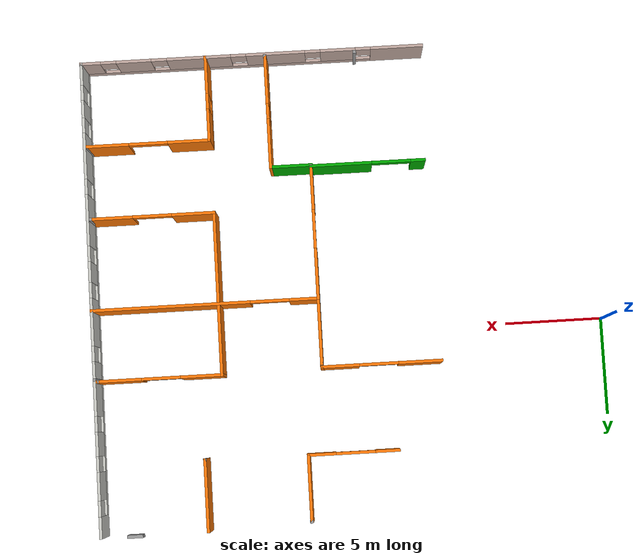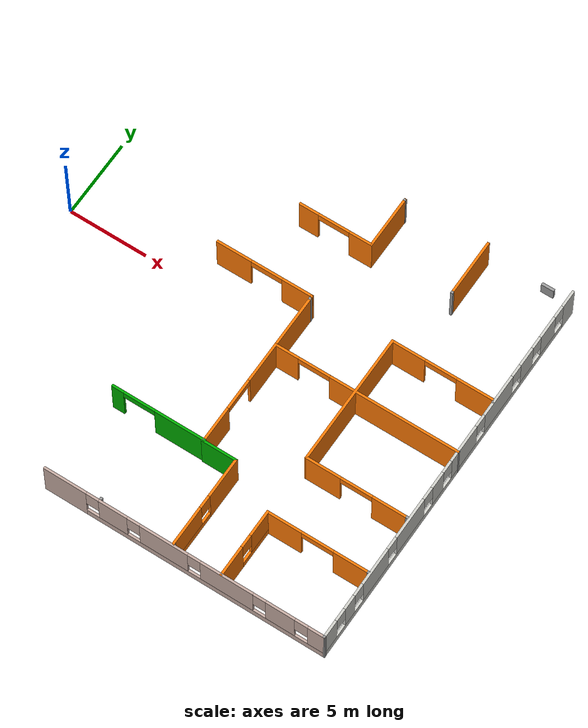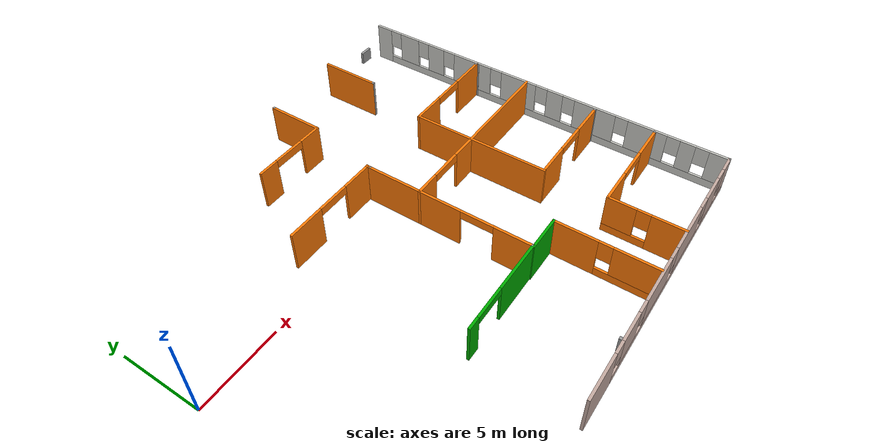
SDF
<sdf version="1.6">
 <model name="FloorPlan">
  <pose>-3.5402 -2.3631 0 0 -0 0</pose>
  <link name="Wall_1">
   <pose>29.8922 -0.024899 0 0 -0 -1.5708</pose>
   <visual name="Wall_1_Visual_0">
    <pose>-11.6902 0 1.25 0 -0 0</pose>
    <geometry><box><size>1.11957 0.15 2.5</size></box></geometry>
    <material>
     <script><uri>file://media/materials/scripts/gazebo.material</uri><name>Gazebo/CeilingTiled</name></script>
     <ambient>0.760784 0.662745 0.627451 1</ambient>
    </material>
    <meta><layer>0</layer></meta>
   </visual>
   <collision name="Wall_1_Collision_0">
    <geometry><box><size>1.11957 0.15 2.5</size></box></geometry>
    <pose>-11.6902 0 1.25 0 -0 0</pose>
   </collision>
   <visual name="Wall_1_Visual_1">
    <pose>0.559784 0 0.25 0 -0 0</pose>
    <geometry><box><size>23.3804 0.15 0.5</size></box></geometry>
    <material>
     <script><uri>file://media/materials/scripts/gazebo.material</uri><name>Gazebo/CeilingTiled</name></script>
     <ambient>0.760784 0.662745 0.627451 1</ambient>
    </material>
    <meta><layer>0</layer></meta>
   </visual>
   <collision name="Wall_1_Collision_1">
    <geometry><box><size>23.3804 0.15 0.5</size></box></geometry>
    <pose>0.559784 0 0.25 0 -0 0</pose>
   </collision>
   <visual name="Wall_1_Visual_2">
    <pose>-9.60688 0 1.5 0 -0 0</pose>
    <geometry><box><size>1.44711 0.15 2</size></box></geometry>
    <material>
     <script><uri>file://media/materials/scripts/gazebo.material</uri><name>Gazebo/CeilingTiled</name></script>
     <ambient>0.760784 0.662745 0.627451 1</ambient>
    </material>
    <meta><layer>0</layer></meta>
   </visual>
   <collision name="Wall_1_Collision_2">
    <geometry><box><size>1.44711 0.15 2</size></box></geometry>
    <pose>-9.60688 0 1.5 0 -0 0</pose>
   </collision>
   <visual name="Wall_1_Visual_3">
    <pose>-7.46678 0 1.5 0 -0 0</pose>
    <geometry><box><size>1.2331 0.15 2</size></box></geometry>
    <material>
     <script><uri>file://media/materials/scripts/gazebo.material</uri><name>Gazebo/CeilingTiled</name></script>
     <ambient>0.760784 0.662745 0.627451 1</ambient>
    </material>
    <meta><layer>0</layer></meta>
   </visual>
   <collision name="Wall_1_Collision_3">
    <geometry><box><size>1.2331 0.15 2</size></box></geometry>
    <pose>-7.46678 0 1.5 0 -0 0</pose>
   </collision>
   <visual name="Wall_1_Visual_4">
    <pose>-4.6579 0 1.5 0 -0 0</pose>
    <geometry><box><size>2.78467 0.15 2</size></box></geometry>
    <material>
     <script><uri>file://media/materials/scripts/gazebo.material</uri><name>Gazebo/CeilingTiled</name></script>
     <ambient>0.760784 0.662745 0.627451 1</ambient>
    </material>
    <meta><layer>0</layer></meta>
   </visual>
   <collision name="Wall_1_Collision_4">
    <geometry><box><size>2.78467 0.15 2</size></box></geometry>
    <pose>-4.6579 0 1.5 0 -0 0</pose>
   </collision>
   <visual name="Wall_1_Visual_5">
    <pose>-1.23374 0 1.5 0 -0 0</pose>
    <geometry><box><size>2.46365 0.15 2</size></box></geometry>
    <material>
     <script><uri>file://media/materials/scripts/gazebo.material</uri><name>Gazebo/CeilingTiled</name></script>
     <ambient>0.760784 0.662745 0.627451 1</ambient>
    </material>
    <meta><layer>0</layer></meta>
   </visual>
   <collision name="Wall_1_Collision_5">
    <geometry><box><size>2.46365 0.15 2</size></box></geometry>
    <pose>-1.23374 0 1.5 0 -0 0</pose>
   </collision>
   <visual name="Wall_1_Visual_6">
    <pose>1.33438 0 1.5 0 -0 0</pose>
    <geometry><box><size>1.07259 0.15 2</size></box></geometry>
    <material>
     <script><uri>file://media/materials/scripts/gazebo.material</uri><name>Gazebo/CeilingTiled</name></script>
     <ambient>0.760784 0.662745 0.627451 1</ambient>
    </material>
    <meta><layer>0</layer></meta>
   </visual>
   <collision name="Wall_1_Collision_6">
    <geometry><box><size>1.07259 0.15 2</size></box></geometry>
    <pose>1.33438 0 1.5 0 -0 0</pose>
   </collision>
   <visual name="Wall_1_Visual_7">
    <pose>4.00951 0 1.5 0 -0 0</pose>
    <geometry><box><size>2.67766 0.15 2</size></box></geometry>
    <material>
     <script><uri>file://media/materials/scripts/gazebo.material</uri><name>Gazebo/CeilingTiled</name></script>
     <ambient>0.760784 0.662745 0.627451 1</ambient>
    </material>
    <meta><layer>0</layer></meta>
   </visual>
   <collision name="Wall_1_Collision_7">
    <geometry><box><size>2.67766 0.15 2</size></box></geometry>
    <pose>4.00951 0 1.5 0 -0 0</pose>
   </collision>
   <visual name="Wall_1_Visual_8">
    <pose>7.35341 0 1.5 0 -0 0</pose>
    <geometry><box><size>2.41015 0.15 2</size></box></geometry>
    <material>
     <script><uri>file://media/materials/scripts/gazebo.material</uri><name>Gazebo/CeilingTiled</name></script>
     <ambient>0.760784 0.662745 0.627451 1</ambient>
    </material>
    <meta><layer>0</layer></meta>
   </visual>
   <collision name="Wall_1_Collision_8">
    <geometry><box><size>2.41015 0.15 2</size></box></geometry>
    <pose>7.35341 0 1.5 0 -0 0</pose>
   </collision>
   <visual name="Wall_1_Visual_9">
    <pose>9.81453 0 1.5 0 -0 0</pose>
    <geometry><box><size>0.91208 0.15 2</size></box></geometry>
    <material>
     <script><uri>file://media/materials/scripts/gazebo.material</uri><name>Gazebo/CeilingTiled</name></script>
     <ambient>0.760784 0.662745 0.627451 1</ambient>
    </material>
    <meta><layer>0</layer></meta>
   </visual>
   <collision name="Wall_1_Collision_9">
    <geometry><box><size>0.91208 0.15 2</size></box></geometry>
    <pose>9.81453 0 1.5 0 -0 0</pose>
   </collision>
   <visual name="Wall_1_Visual_10">
    <pose>11.6603 0 1.5 0 -0 0</pose>
    <geometry><box><size>1.17943 0.15 2</size></box></geometry>
    <material>
     <script><uri>file://media/materials/scripts/gazebo.material</uri><name>Gazebo/CeilingTiled</name></script>
     <ambient>0.760784 0.662745 0.627451 1</ambient>
    </material>
    <meta><layer>0</layer></meta>
   </visual>
   <collision name="Wall_1_Collision_10">
    <geometry><box><size>1.17943 0.15 2</size></box></geometry>
    <pose>11.6603 0 1.5 0 -0 0</pose>
   </collision>
   <visual name="Wall_1_Visual_11">
    <pose>-10.7304 0 1.9 0 -0 0</pose>
    <geometry><box><size>0.8 0.15 1.2</size></box></geometry>
    <material>
     <script><uri>file://media/materials/scripts/gazebo.material</uri><name>Gazebo/CeilingTiled</name></script>
     <ambient>0.760784 0.662745 0.627451 1</ambient>
    </material>
    <meta><layer>0</layer></meta>
   </visual>
   <collision name="Wall_1_Collision_11">
    <geometry><box><size>0.8 0.15 1.2</size></box></geometry>
    <pose>-10.7304 0 1.9 0 -0 0</pose>
   </collision>
   <visual name="Wall_1_Visual_12">
    <pose>-8.48333 0 1.9 0 -0 0</pose>
    <geometry><box><size>0.8 0.15 1.2</size></box></geometry>
    <material>
     <script><uri>file://media/materials/scripts/gazebo.material</uri><name>Gazebo/CeilingTiled</name></script>
     <ambient>0.760784 0.662745 0.627451 1</ambient>
    </material>
    <meta><layer>0</layer></meta>
   </visual>
   <collision name="Wall_1_Collision_12">
    <geometry><box><size>0.8 0.15 1.2</size></box></geometry>
    <pose>-8.48333 0 1.9 0 -0 0</pose>
   </collision>
   <visual name="Wall_1_Visual_13">
    <pose>-6.45023 0 1.9 0 -0 0</pose>
    <geometry><box><size>0.8 0.15 1.2</size></box></geometry>
    <material>
     <script><uri>file://media/materials/scripts/gazebo.material</uri><name>Gazebo/CeilingTiled</name></script>
     <ambient>0.760784 0.662745 0.627451 1</ambient>
    </material>
    <meta><layer>0</layer></meta>
   </visual>
   <collision name="Wall_1_Collision_13">
    <geometry><box><size>0.8 0.15 1.2</size></box></geometry>
    <pose>-6.45023 0 1.9 0 -0 0</pose>
   </collision>
   <visual name="Wall_1_Visual_14">
    <pose>-2.86557 0 1.9 0 -0 0</pose>
    <geometry><box><size>0.8 0.15 1.2</size></box></geometry>
    <material>
     <script><uri>file://media/materials/scripts/gazebo.material</uri><name>Gazebo/CeilingTiled</name></script>
     <ambient>0.760784 0.662745 0.627451 1</ambient>
    </material>
    <meta><layer>0</layer></meta>
   </visual>
   <collision name="Wall_1_Collision_14">
    <geometry><box><size>0.8 0.15 1.2</size></box></geometry>
    <pose>-2.86557 0 1.9 0 -0 0</pose>
   </collision>
   <visual name="Wall_1_Visual_15">
    <pose>0.398088 0 1.9 0 -0 0</pose>
    <geometry><box><size>0.8 0.15 1.2</size></box></geometry>
    <material>
     <script><uri>file://media/materials/scripts/gazebo.material</uri><name>Gazebo/CeilingTiled</name></script>
     <ambient>0.760784 0.662745 0.627451 1</ambient>
    </material>
    <meta><layer>0</layer></meta>
   </visual>
   <collision name="Wall_1_Collision_15">
    <geometry><box><size>0.8 0.15 1.2</size></box></geometry>
    <pose>0.398088 0 1.9 0 -0 0</pose>
   </collision>
   <visual name="Wall_1_Visual_16">
    <pose>2.27068 0 1.9 0 -0 0</pose>
    <geometry><box><size>0.8 0.15 1.2</size></box></geometry>
    <material>
     <script><uri>file://media/materials/scripts/gazebo.material</uri><name>Gazebo/CeilingTiled</name></script>
     <ambient>0.760784 0.662745 0.627451 1</ambient>
    </material>
    <meta><layer>0</layer></meta>
   </visual>
   <collision name="Wall_1_Collision_16">
    <geometry><box><size>0.8 0.15 1.2</size></box></geometry>
    <pose>2.27068 0 1.9 0 -0 0</pose>
   </collision>
   <visual name="Wall_1_Visual_17">
    <pose>5.74834 0 1.9 0 -0 0</pose>
    <geometry><box><size>0.8 0.15 1.2</size></box></geometry>
    <material>
     <script><uri>file://media/materials/scripts/gazebo.material</uri><name>Gazebo/CeilingTiled</name></script>
     <ambient>0.760784 0.662745 0.627451 1</ambient>
    </material>
    <meta><layer>0</layer></meta>
   </visual>
   <collision name="Wall_1_Collision_17">
    <geometry><box><size>0.8 0.15 1.2</size></box></geometry>
    <pose>5.74834 0 1.9 0 -0 0</pose>
   </collision>
   <visual name="Wall_1_Visual_18">
    <pose>8.95849 0 1.9 0 -0 0</pose>
    <geometry><box><size>0.8 0.15 1.2</size></box></geometry>
    <material>
     <script><uri>file://media/materials/scripts/gazebo.material</uri><name>Gazebo/CeilingTiled</name></script>
     <ambient>0.760784 0.662745 0.627451 1</ambient>
    </material>
    <meta><layer>0</layer></meta>
   </visual>
   <collision name="Wall_1_Collision_18">
    <geometry><box><size>0.8 0.15 1.2</size></box></geometry>
    <pose>8.95849 0 1.9 0 -0 0</pose>
   </collision>
   <visual name="Wall_1_Visual_19">
    <pose>10.6706 0 1.9 0 -0 0</pose>
    <geometry><box><size>0.8 0.15 1.2</size></box></geometry>
    <material>
     <script><uri>file://media/materials/scripts/gazebo.material</uri><name>Gazebo/CeilingTiled</name></script>
     <ambient>0.760784 0.662745 0.627451 1</ambient>
    </material>
    <meta><layer>0</layer></meta>
   </visual>
   <collision name="Wall_1_Collision_19">
    <geometry><box><size>0.8 0.15 1.2</size></box></geometry>
    <pose>10.6706 0 1.9 0 -0 0</pose>
   </collision>
  </link>
  <link name="Wall_123">
   <collision name="Wall_123_Collision">
    <geometry><box><size>0.15 0.15 2.5</size></box></geometry>
    <pose>0 0 1.25 0 -0 0</pose>
   </collision>
   <visual name="Wall_123_Visual">
    <pose>0 0 1.25 0 -0 0</pose>
    <geometry><box><size>0.15 0.15 2.5</size></box></geometry>
    <material>
     <script><uri>file://media/materials/scripts/gazebo.material</uri><name>Gazebo/Grey</name></script>
     <ambient>1 1 1 1</ambient>
    </material>
    <meta><layer>0</layer></meta>
   </visual>
   <pose>29.8852 4.1779 0 0 -0 0</pose>
  </link>
  <link name="Wall_128">
   <pose>24.0926 0.649775 0 0 -0 0</pose>
   <visual name="Wall_128_Visual_0">
    <pose>-5.09508 0 1.25 0 -0 0</pose>
    <geometry><box><size>1.55985 0.15 2.5</size></box></geometry>
    <material>
     <script><uri>file://media/materials/scripts/gazebo.material</uri><name>Gazebo/Grey</name></script>
     <ambient>0.996078 0.47451 0.0196078 1</ambient>
    </material>
    <meta><layer>0</layer></meta>
   </visual>
   <collision name="Wall_128_Collision_0">
    <geometry><box><size>1.55985 0.15 2.5</size></box></geometry>
    <pose>-5.09508 0 1.25 0 -0 0</pose>
   </collision>
   <visual name="Wall_128_Visual_1">
    <pose>1.77992 0 1.25 0 -0 0</pose>
    <geometry><box><size>8.19015 0.15 2.5</size></box></geometry>
    <material>
     <script><uri>file://media/materials/scripts/gazebo.material</uri><name>Gazebo/Grey</name></script>
     <ambient>0.996078 0.47451 0.0196078 1</ambient>
    </material>
    <meta><layer>0</layer></meta>
   </visual>
   <collision name="Wall_128_Collision_1">
    <geometry><box><size>8.19015 0.15 2.5</size></box></geometry>
    <pose>1.77992 0 1.25 0 -0 0</pose>
   </collision>
   <visual name="Wall_128_Visual_2">
    <pose>-3.31515 0 2.25 0 -0 0</pose>
    <geometry><box><size>2 0.15 0.5</size></box></geometry>
    <material>
     <script><uri>file://media/materials/scripts/gazebo.material</uri><name>Gazebo/Grey</name></script>
     <ambient>0.996078 0.47451 0.0196078 1</ambient>
    </material>
    <meta><layer>0</layer></meta>
   </visual>
   <collision name="Wall_128_Collision_2">
    <geometry><box><size>2 0.15 0.5</size></box></geometry>
    <pose>-3.31515 0 2.25 0 -0 0</pose>
   </collision>
  </link>
  <link name="Wall_129">
   <collision name="Wall_129_Collision">
    <geometry><box><size>0.15 0.15 2.5</size></box></geometry>
    <pose>0 0 1.25 0 -0 0</pose>
   </collision>
   <visual name="Wall_129_Visual">
    <pose>0 0 1.25 0 -0 0</pose>
    <geometry><box><size>0.15 0.15 2.5</size></box></geometry>
    <material>
     <script><uri>file://media/materials/scripts/gazebo.material</uri><name>Gazebo/Grey</name></script>
     <ambient>1 1 1 1</ambient>
    </material>
    <meta><layer>0</layer></meta>
   </visual>
   <pose>29.8926 0.649775 0 0 -0 0</pose>
  </link>
  <link name="Wall_131">
   <collision name="Wall_131_Collision">
    <geometry><box><size>3.5 0.15 2.5</size></box></geometry>
    <pose>0 0 1.25 0 -0 0</pose>
   </collision>
   <visual name="Wall_131_Visual">
    <pose>0 0 1.25 0 -0 0</pose>
    <geometry><box><size>3.5 0.15 2.5</size></box></geometry>
    <material>
     <script><uri>file://media/materials/scripts/gazebo.material</uri><name>Gazebo/Grey</name></script>
     <ambient>0.996078 0.47451 0.0196078 1</ambient>
    </material>
    <meta><layer>0</layer></meta>
   </visual>
   <pose>18.2926 2.32477 0 0 -0 1.5708</pose>
  </link>
  <link name="Wall_132">
   <collision name="Wall_132_Collision">
    <geometry><box><size>0.16 0.15 2.5</size></box></geometry>
    <pose>0 0 1.25 0 -0 0</pose>
   </collision>
   <visual name="Wall_132_Visual">
    <pose>0 0 1.25 0 -0 0</pose>
    <geometry><box><size>0.16 0.15 2.5</size></box></geometry>
    <material>
     <script><uri>file://media/materials/scripts/gazebo.material</uri><name>Gazebo/Grey</name></script>
     <ambient>1 1 1 1</ambient>
    </material>
    <meta><layer>0</layer></meta>
   </visual>
   <pose>18.2976 3.99978 0 0 -0 0</pose>
  </link>
  <link name="Wall_134">
   <collision name="Wall_134_Collision">
    <geometry><box><size>8.5 0.15 2.5</size></box></geometry>
    <pose>0 0 1.25 0 -0 0</pose>
   </collision>
   <visual name="Wall_134_Visual">
    <pose>0 0 1.25 0 -0 0</pose>
    <geometry><box><size>8.5 0.15 2.5</size></box></geometry>
    <material>
     <script><uri>file://media/materials/scripts/gazebo.material</uri><name>Gazebo/Grey</name></script>
     <ambient>0.996078 0.47451 0.0196078 1</ambient>
    </material>
    <meta><layer>0</layer></meta>
   </visual>
   <pose>23.3991 0.109907 0 0 -0 -1.5708</pose>
  </link>
  <link name="Wall_135">
   <pose>26.5741 -4.06509 0 0 -0 0</pose>
   <visual name="Wall_135_Visual_0">
    <pose>-2.12495 0 1.25 0 -0 0</pose>
    <geometry><box><size>2.25011 0.15 2.5</size></box></geometry>
    <material>
     <script><uri>file://media/materials/scripts/gazebo.material</uri><name>Gazebo/Grey</name></script>
     <ambient>0.996078 0.47451 0.0196078 1</ambient>
    </material>
    <meta><layer>0</layer></meta>
   </visual>
   <collision name="Wall_135_Collision_0">
    <geometry><box><size>2.25011 0.15 2.5</size></box></geometry>
    <pose>-2.12495 0 1.25 0 -0 0</pose>
   </collision>
   <visual name="Wall_135_Visual_1">
    <pose>2.12505 0 1.25 0 -0 0</pose>
    <geometry><box><size>2.24989 0.15 2.5</size></box></geometry>
    <material>
     <script><uri>file://media/materials/scripts/gazebo.material</uri><name>Gazebo/Grey</name></script>
     <ambient>0.996078 0.47451 0.0196078 1</ambient>
    </material>
    <meta><layer>0</layer></meta>
   </visual>
   <collision name="Wall_135_Collision_1">
    <geometry><box><size>2.24989 0.15 2.5</size></box></geometry>
    <pose>2.12505 0 1.25 0 -0 0</pose>
   </collision>
   <visual name="Wall_135_Visual_2">
    <pose>0.000105 0 2.25 0 -0 0</pose>
    <geometry><box><size>2 0.15 0.5</size></box></geometry>
    <material>
     <script><uri>file://media/materials/scripts/gazebo.material</uri><name>Gazebo/Grey</name></script>
     <ambient>0.996078 0.47451 0.0196078 1</ambient>
    </material>
    <meta><layer>0</layer></meta>
   </visual>
   <collision name="Wall_135_Collision_2">
    <geometry><box><size>2 0.15 0.5</size></box></geometry>
    <pose>0.000105 0 2.25 0 -0 0</pose>
   </collision>
  </link>
  <link name="Wall_136">
   <collision name="Wall_136_Collision">
    <geometry><box><size>0.16 0.15 2.5</size></box></geometry>
    <pose>0 0 1.25 0 -0 0</pose>
   </collision>
   <visual name="Wall_136_Visual">
    <pose>0 0 1.25 0 -0 0</pose>
    <geometry><box><size>0.16 0.15 2.5</size></box></geometry>
    <material>
     <script><uri>file://media/materials/scripts/gazebo.material</uri><name>Gazebo/Grey</name></script>
     <ambient>1 1 1 1</ambient>
    </material>
    <meta><layer>0</layer></meta>
   </visual>
   <pose>29.7541 -4.06509 0 0 -0 0</pose>
  </link>
  <link name="Wall_141">
   <pose>23.4526 -10.0189 0 0 -0 1.5708</pose>
   <visual name="Wall_141_Visual_0">
    <pose>-1.2622 0 1.25 0 -0 0</pose>
    <geometry><box><size>1.97561 0.15 2.5</size></box></geometry>
    <material>
     <script><uri>file://media/materials/scripts/gazebo.material</uri><name>Gazebo/Grey</name></script>
     <ambient>0.996078 0.47451 0.0196078 1</ambient>
    </material>
    <meta><layer>0</layer></meta>
   </visual>
   <collision name="Wall_141_Collision_0">
    <geometry><box><size>1.97561 0.15 2.5</size></box></geometry>
    <pose>-1.2622 0 1.25 0 -0 0</pose>
   </collision>
   <visual name="Wall_141_Visual_1">
    <pose>0.987804 0 0.25 0 -0 0</pose>
    <geometry><box><size>2.52439 0.15 0.5</size></box></geometry>
    <material>
     <script><uri>file://media/materials/scripts/gazebo.material</uri><name>Gazebo/Grey</name></script>
     <ambient>0.996078 0.47451 0.0196078 1</ambient>
    </material>
    <meta><layer>0</layer></meta>
   </visual>
   <collision name="Wall_141_Collision_1">
    <geometry><box><size>2.52439 0.15 0.5</size></box></geometry>
    <pose>0.987804 0 0.25 0 -0 0</pose>
   </collision>
   <visual name="Wall_141_Visual_2">
    <pose>1.3878 0 1.5 0 -0 0</pose>
    <geometry><box><size>1.72439 0.15 2</size></box></geometry>
    <material>
     <script><uri>file://media/materials/scripts/gazebo.material</uri><name>Gazebo/Grey</name></script>
     <ambient>0.996078 0.47451 0.0196078 1</ambient>
    </material>
    <meta><layer>0</layer></meta>
   </visual>
   <collision name="Wall_141_Collision_2">
    <geometry><box><size>1.72439 0.15 2</size></box></geometry>
    <pose>1.3878 0 1.5 0 -0 0</pose>
   </collision>
   <visual name="Wall_141_Visual_3">
    <pose>0.125608 0 1.9 0 -0 0</pose>
    <geometry><box><size>0.8 0.15 1.2</size></box></geometry>
    <material>
     <script><uri>file://media/materials/scripts/gazebo.material</uri><name>Gazebo/Grey</name></script>
     <ambient>0.996078 0.47451 0.0196078 1</ambient>
    </material>
    <meta><layer>0</layer></meta>
   </visual>
   <collision name="Wall_141_Collision_3">
    <geometry><box><size>0.8 0.15 1.2</size></box></geometry>
    <pose>0.125608 0 1.9 0 -0 0</pose>
   </collision>
  </link>
  <link name="Wall_142">
   <pose>26.6276 -7.84386 0 0 -0 0</pose>
   <visual name="Wall_142_Visual_0">
    <pose>-2.13418 0 1.25 0 -0 0</pose>
    <geometry><box><size>2.23165 0.15 2.5</size></box></geometry>
    <material>
     <script><uri>file://media/materials/scripts/gazebo.material</uri><name>Gazebo/Grey</name></script>
     <ambient>0.996078 0.47451 0.0196078 1</ambient>
    </material>
    <meta><layer>0</layer></meta>
   </visual>
   <collision name="Wall_142_Collision_0">
    <geometry><box><size>2.23165 0.15 2.5</size></box></geometry>
    <pose>-2.13418 0 1.25 0 -0 0</pose>
   </collision>
   <visual name="Wall_142_Visual_1">
    <pose>2.11582 0 1.25 0 -0 0</pose>
    <geometry><box><size>2.26835 0.15 2.5</size></box></geometry>
    <material>
     <script><uri>file://media/materials/scripts/gazebo.material</uri><name>Gazebo/Grey</name></script>
     <ambient>0.996078 0.47451 0.0196078 1</ambient>
    </material>
    <meta><layer>0</layer></meta>
   </visual>
   <collision name="Wall_142_Collision_1">
    <geometry><box><size>2.26835 0.15 2.5</size></box></geometry>
    <pose>2.11582 0 1.25 0 -0 0</pose>
   </collision>
   <visual name="Wall_142_Visual_2">
    <pose>-0.018353 0 2.25 0 -0 0</pose>
    <geometry><box><size>2 0.15 0.5</size></box></geometry>
    <material>
     <script><uri>file://media/materials/scripts/gazebo.material</uri><name>Gazebo/Grey</name></script>
     <ambient>0.996078 0.47451 0.0196078 1</ambient>
    </material>
    <meta><layer>0</layer></meta>
   </visual>
   <collision name="Wall_142_Collision_2">
    <geometry><box><size>2 0.15 0.5</size></box></geometry>
    <pose>-0.018353 0 2.25 0 -0 0</pose>
   </collision>
  </link>
  <link name="Wall_143">
   <collision name="Wall_143_Collision">
    <geometry><box><size>0.15 0.15 2.5</size></box></geometry>
    <pose>0 0 1.25 0 -0 0</pose>
   </collision>
   <visual name="Wall_143_Visual">
    <pose>0 0 1.25 0 -0 0</pose>
    <geometry><box><size>0.15 0.15 2.5</size></box></geometry>
    <material>
     <script><uri>file://media/materials/scripts/gazebo.material</uri><name>Gazebo/Grey</name></script>
     <ambient>1 1 1 1</ambient>
    </material>
    <meta><layer>0</layer></meta>
   </visual>
   <pose>29.8026 -7.84386 0 0 -0 0</pose>
  </link>
  <link name="Wall_148">
   <collision name="Wall_148_Collision">
    <geometry><box><size>2.25 0.15 2.5</size></box></geometry>
    <pose>0 0 1.25 0 -0 0</pose>
   </collision>
   <visual name="Wall_148_Visual">
    <pose>0 0 1.25 0 -0 0</pose>
    <geometry><box><size>2.25 0.15 2.5</size></box></geometry>
    <material>
     <script><uri>file://media/materials/scripts/gazebo.material</uri><name>Gazebo/Grey</name></script>
     <ambient>0 0.666667 0 1</ambient>
    </material>
    <meta><layer>0</layer></meta>
   </visual>
   <pose>19.3129 -6.25509 0 0 -0 0</pose>
  </link>
  <link name="Wall_149">
   <pose>20.3629 -9.18009 0 0 -0 -1.5708</pose>
   <visual name="Wall_149_Visual_0">
    <pose>-1.69118 0 1.25 0 -0 0</pose>
    <geometry><box><size>2.61764 0.15 2.5</size></box></geometry>
    <material>
     <script><uri>file://media/materials/scripts/gazebo.material</uri><name>Gazebo/Grey</name></script>
     <ambient>0.996078 0.47451 0.0196078 1</ambient>
    </material>
    <meta><layer>0</layer></meta>
   </visual>
   <collision name="Wall_149_Collision_0">
    <geometry><box><size>2.61764 0.15 2.5</size></box></geometry>
    <pose>-1.69118 0 1.25 0 -0 0</pose>
   </collision>
   <visual name="Wall_149_Visual_1">
    <pose>1.30882 0 0.25 0 -0 0</pose>
    <geometry><box><size>3.38236 0.15 0.5</size></box></geometry>
    <material>
     <script><uri>file://media/materials/scripts/gazebo.material</uri><name>Gazebo/Grey</name></script>
     <ambient>0.996078 0.47451 0.0196078 1</ambient>
    </material>
    <meta><layer>0</layer></meta>
   </visual>
   <collision name="Wall_149_Collision_1">
    <geometry><box><size>3.38236 0.15 0.5</size></box></geometry>
    <pose>1.30882 0 0.25 0 -0 0</pose>
   </collision>
   <visual name="Wall_149_Visual_2">
    <pose>1.70882 0 1.5 0 -0 0</pose>
    <geometry><box><size>2.58236 0.15 2</size></box></geometry>
    <material>
     <script><uri>file://media/materials/scripts/gazebo.material</uri><name>Gazebo/Grey</name></script>
     <ambient>0.996078 0.47451 0.0196078 1</ambient>
    </material>
    <meta><layer>0</layer></meta>
   </visual>
   <collision name="Wall_149_Collision_2">
    <geometry><box><size>2.58236 0.15 2</size></box></geometry>
    <pose>1.70882 0 1.5 0 -0 0</pose>
   </collision>
   <visual name="Wall_149_Visual_3">
    <pose>0.017638 0 1.9 0 -0 0</pose>
    <geometry><box><size>0.8 0.15 1.2</size></box></geometry>
    <material>
     <script><uri>file://media/materials/scripts/gazebo.material</uri><name>Gazebo/Grey</name></script>
     <ambient>0.996078 0.47451 0.0196078 1</ambient>
    </material>
    <meta><layer>0</layer></meta>
   </visual>
   <collision name="Wall_149_Collision_3">
    <geometry><box><size>0.8 0.15 1.2</size></box></geometry>
    <pose>0.017638 0 1.9 0 -0 0</pose>
   </collision>
  </link>
  <link name="Wall_150">
   <collision name="Wall_150_Collision">
    <geometry><box><size>0.16 0.15 2.5</size></box></geometry>
    <pose>0 0 1.25 0 -0 0</pose>
   </collision>
   <visual name="Wall_150_Visual">
    <pose>0 0 1.25 0 -0 0</pose>
    <geometry><box><size>0.16 0.15 2.5</size></box></geometry>
    <material>
     <script><uri>file://media/materials/scripts/gazebo.material</uri><name>Gazebo/Grey</name></script>
     <ambient>1 1 1 1</ambient>
    </material>
    <meta><layer>0</layer></meta>
   </visual>
   <pose>20.3679 -12.1051 0 0 -0 0</pose>
  </link>
  <link name="Wall_158">
   <pose>16.9247 8.60328 0 0 -0 0</pose>
   <visual name="Wall_158_Visual_0">
    <pose>-1.7407 0 1.25 0 -0 0</pose>
    <geometry><box><size>1.2686 0.15 2.5</size></box></geometry>
    <material>
     <script><uri>file://media/materials/scripts/gazebo.material</uri><name>Gazebo/Grey</name></script>
     <ambient>0.996078 0.47451 0.0196078 1</ambient>
    </material>
    <meta><layer>0</layer></meta>
   </visual>
   <collision name="Wall_158_Collision_0">
    <geometry><box><size>1.2686 0.15 2.5</size></box></geometry>
    <pose>-1.7407 0 1.25 0 -0 0</pose>
   </collision>
   <visual name="Wall_158_Visual_1">
    <pose>1.6343 0 1.25 0 -0 0</pose>
    <geometry><box><size>1.4814 0.15 2.5</size></box></geometry>
    <material>
     <script><uri>file://media/materials/scripts/gazebo.material</uri><name>Gazebo/Grey</name></script>
     <ambient>0.996078 0.47451 0.0196078 1</ambient>
    </material>
    <meta><layer>0</layer></meta>
   </visual>
   <collision name="Wall_158_Collision_1">
    <geometry><box><size>1.4814 0.15 2.5</size></box></geometry>
    <pose>1.6343 0 1.25 0 -0 0</pose>
   </collision>
   <visual name="Wall_158_Visual_2">
    <pose>-0.106397 0 2.25 0 -0 0</pose>
    <geometry><box><size>2 0.15 0.5</size></box></geometry>
    <material>
     <script><uri>file://media/materials/scripts/gazebo.material</uri><name>Gazebo/Grey</name></script>
     <ambient>0.996078 0.47451 0.0196078 1</ambient>
    </material>
    <meta><layer>0</layer></meta>
   </visual>
   <collision name="Wall_158_Collision_2">
    <geometry><box><size>2 0.15 0.5</size></box></geometry>
    <pose>-0.106397 0 2.25 0 -0 0</pose>
   </collision>
  </link>
  <link name="Wall_159">
   <collision name="Wall_159_Collision">
    <geometry><box><size>3.5 0.15 2.5</size></box></geometry>
    <pose>0 0 1.25 0 -0 0</pose>
   </collision>
   <visual name="Wall_159_Visual">
    <pose>0 0 1.25 0 -0 0</pose>
    <geometry><box><size>3.5 0.15 2.5</size></box></geometry>
    <material>
     <script><uri>file://media/materials/scripts/gazebo.material</uri><name>Gazebo/Grey</name></script>
     <ambient>0.996078 0.47451 0.0196078 1</ambient>
    </material>
    <meta><layer>0</layer></meta>
   </visual>
   <pose>19.2247 10.2783 0 0 -0 1.5708</pose>
  </link>
  <link name="Wall_160">
   <collision name="Wall_160_Collision">
    <geometry><box><size>0.16 0.15 2.5</size></box></geometry>
    <pose>0 0 1.25 0 -0 0</pose>
   </collision>
   <visual name="Wall_160_Visual">
    <pose>0 0 1.25 0 -0 0</pose>
    <geometry><box><size>0.16 0.15 2.5</size></box></geometry>
    <material>
     <script><uri>file://media/materials/scripts/gazebo.material</uri><name>Gazebo/Grey</name></script>
     <ambient>1 1 1 1</ambient>
    </material>
    <meta><layer>0</layer></meta>
   </visual>
   <pose>19.2297 11.9533 0 0 -0 0</pose>
  </link>
  <link name="Wall_172">
   <pose>15.2352 4.1779 0 0 -0 0</pose>
   <visual name="Wall_172_Visual_0">
    <pose>-1.99324 0 1.25 0 -0 0</pose>
    <geometry><box><size>2.26353 0.15 2.5</size></box></geometry>
    <material>
     <script><uri>file://media/materials/scripts/gazebo.material</uri><name>Gazebo/Grey</name></script>
     <ambient>0.996078 0.47451 0.0196078 1</ambient>
    </material>
    <meta><layer>0</layer></meta>
   </visual>
   <collision name="Wall_172_Collision_0">
    <geometry><box><size>2.26353 0.15 2.5</size></box></geometry>
    <pose>-1.99324 0 1.25 0 -0 0</pose>
   </collision>
   <visual name="Wall_172_Visual_1">
    <pose>2.13176 0 1.25 0 -0 0</pose>
    <geometry><box><size>1.98647 0.15 2.5</size></box></geometry>
    <material>
     <script><uri>file://media/materials/scripts/gazebo.material</uri><name>Gazebo/Grey</name></script>
     <ambient>0.996078 0.47451 0.0196078 1</ambient>
    </material>
    <meta><layer>0</layer></meta>
   </visual>
   <collision name="Wall_172_Collision_1">
    <geometry><box><size>1.98647 0.15 2.5</size></box></geometry>
    <pose>2.13176 0 1.25 0 -0 0</pose>
   </collision>
   <visual name="Wall_172_Visual_2">
    <pose>0.138528 0 2.25 0 -0 0</pose>
    <geometry><box><size>2 0.15 0.5</size></box></geometry>
    <material>
     <script><uri>file://media/materials/scripts/gazebo.material</uri><name>Gazebo/Grey</name></script>
     <ambient>0.996078 0.47451 0.0196078 1</ambient>
    </material>
    <meta><layer>0</layer></meta>
   </visual>
   <collision name="Wall_172_Collision_2">
    <geometry><box><size>2 0.15 0.5</size></box></geometry>
    <pose>0.138528 0 2.25 0 -0 0</pose>
   </collision>
  </link>
  <link name="Wall_173">
   <collision name="Wall_173_Collision">
    <geometry><box><size>0.16 0.15 2.5</size></box></geometry>
    <pose>0 0 1.25 0 -0 0</pose>
   </collision>
   <visual name="Wall_173_Visual">
    <pose>0 0 1.25 0 -0 0</pose>
    <geometry><box><size>0.16 0.15 2.5</size></box></geometry>
    <material>
     <script><uri>file://media/materials/scripts/gazebo.material</uri><name>Gazebo/Grey</name></script>
     <ambient>0.996078 0.47451 0.0196078 1</ambient>
    </material>
    <meta><layer>0</layer></meta>
   </visual>
   <pose>18.2902 4.1779 0 0 -0 0</pose>
  </link>
  <link name="Wall_175">
   <pose>26.5741 4.28491 0 0 -0 0</pose>
   <visual name="Wall_175_Visual_0">
    <pose>-2.16093 0 1.25 0 -0 0</pose>
    <geometry><box><size>2.17814 0.15 2.5</size></box></geometry>
    <material>
     <script><uri>file://media/materials/scripts/gazebo.material</uri><name>Gazebo/Grey</name></script>
     <ambient>0.996078 0.47451 0.0196078 1</ambient>
    </material>
    <meta><layer>0</layer></meta>
   </visual>
   <collision name="Wall_175_Collision_0">
    <geometry><box><size>2.17814 0.15 2.5</size></box></geometry>
    <pose>-2.16093 0 1.25 0 -0 0</pose>
   </collision>
   <visual name="Wall_175_Visual_1">
    <pose>2.08907 0 1.25 0 -0 0</pose>
    <geometry><box><size>2.32186 0.15 2.5</size></box></geometry>
    <material>
     <script><uri>file://media/materials/scripts/gazebo.material</uri><name>Gazebo/Grey</name></script>
     <ambient>0.996078 0.47451 0.0196078 1</ambient>
    </material>
    <meta><layer>0</layer></meta>
   </visual>
   <collision name="Wall_175_Collision_1">
    <geometry><box><size>2.32186 0.15 2.5</size></box></geometry>
    <pose>2.08907 0 1.25 0 -0 0</pose>
   </collision>
   <visual name="Wall_175_Visual_2">
    <pose>-0.071856 0 2.25 0 -0 0</pose>
    <geometry><box><size>2 0.15 0.5</size></box></geometry>
    <material>
     <script><uri>file://media/materials/scripts/gazebo.material</uri><name>Gazebo/Grey</name></script>
     <ambient>0.996078 0.47451 0.0196078 1</ambient>
    </material>
    <meta><layer>0</layer></meta>
   </visual>
   <collision name="Wall_175_Collision_2">
    <geometry><box><size>2 0.15 0.5</size></box></geometry>
    <pose>-0.071856 0 2.25 0 -0 0</pose>
   </collision>
  </link>
  <link name="Wall_176">
   <collision name="Wall_176_Collision">
    <geometry><box><size>0.16 0.15 2.5</size></box></geometry>
    <pose>0 0 1.25 0 -0 0</pose>
   </collision>
   <visual name="Wall_176_Visual">
    <pose>0 0 1.25 0 -0 0</pose>
    <geometry><box><size>0.16 0.15 2.5</size></box></geometry>
    <material>
     <script><uri>file://media/materials/scripts/gazebo.material</uri><name>Gazebo/Grey</name></script>
     <ambient>1 1 1 1</ambient>
    </material>
    <meta><layer>0</layer></meta>
   </visual>
   <pose>29.7541 4.28491 0 0 -0 0</pose>
  </link>
  <link name="Wall_178">
   <collision name="Wall_178_Collision">
    <geometry><box><size>3.75 0.15 2.5</size></box></geometry>
    <pose>0 0 1.25 0 -0 0</pose>
   </collision>
   <visual name="Wall_178_Visual">
    <pose>0 0 1.25 0 -0 0</pose>
    <geometry><box><size>3.75 0.15 2.5</size></box></geometry>
    <material>
     <script><uri>file://media/materials/scripts/gazebo.material</uri><name>Gazebo/Grey</name></script>
     <ambient>0.996078 0.47451 0.0196078 1</ambient>
    </material>
    <meta><layer>0</layer></meta>
   </visual>
   <pose>24.4691 10.3498 0 0 -0 -1.5708</pose>
  </link>
  <link name="Wall_179">
   <collision name="Wall_179_Collision">
    <geometry><box><size>0.16 0.15 2.5</size></box></geometry>
    <pose>0 0 1.25 0 -0 0</pose>
   </collision>
   <visual name="Wall_179_Visual">
    <pose>0 0 1.25 0 -0 0</pose>
    <geometry><box><size>0.16 0.15 2.5</size></box></geometry>
    <material>
     <script><uri>file://media/materials/scripts/gazebo.material</uri><name>Gazebo/Grey</name></script>
     <ambient>1 1 1 1</ambient>
    </material>
    <meta><layer>0</layer></meta>
   </visual>
   <pose>24.4741 8.54978 0 0 -0 0</pose>
  </link>
  <link name="Wall_181">
   <pose>18.2926 -2.77522 0 0 -0 -1.5708</pose>
   <visual name="Wall_181_Visual_0">
    <pose>-2.16865 0 1.25 0 -0 0</pose>
    <geometry><box><size>2.6627 0.15 2.5</size></box></geometry>
    <material>
     <script><uri>file://media/materials/scripts/gazebo.material</uri><name>Gazebo/Grey</name></script>
     <ambient>0.996078 0.47451 0.0196078 1</ambient>
    </material>
    <meta><layer>0</layer></meta>
   </visual>
   <collision name="Wall_181_Collision_0">
    <geometry><box><size>2.6627 0.15 2.5</size></box></geometry>
    <pose>-2.16865 0 1.25 0 -0 0</pose>
   </collision>
   <visual name="Wall_181_Visual_1">
    <pose>2.33135 0 1.25 0 -0 0</pose>
    <geometry><box><size>2.3373 0.15 2.5</size></box></geometry>
    <material>
     <script><uri>file://media/materials/scripts/gazebo.material</uri><name>Gazebo/Grey</name></script>
     <ambient>0.996078 0.47451 0.0196078 1</ambient>
    </material>
    <meta><layer>0</layer></meta>
   </visual>
   <collision name="Wall_181_Collision_1">
    <geometry><box><size>2.3373 0.15 2.5</size></box></geometry>
    <pose>2.33135 0 1.25 0 -0 0</pose>
   </collision>
   <visual name="Wall_181_Visual_2">
    <pose>0.162705 0 2.25 0 -0 0</pose>
    <geometry><box><size>2 0.15 0.5</size></box></geometry>
    <material>
     <script><uri>file://media/materials/scripts/gazebo.material</uri><name>Gazebo/Grey</name></script>
     <ambient>0.996078 0.47451 0.0196078 1</ambient>
    </material>
    <meta><layer>0</layer></meta>
   </visual>
   <collision name="Wall_181_Collision_2">
    <geometry><box><size>2 0.15 0.5</size></box></geometry>
    <pose>0.162705 0 2.25 0 -0 0</pose>
   </collision>
  </link>
  <link name="Wall_182">
   <collision name="Wall_182_Collision">
    <geometry><box><size>0.16 0.15 2.5</size></box></geometry>
    <pose>0 0 1.25 0 -0 0</pose>
   </collision>
   <visual name="Wall_182_Visual">
    <pose>0 0 1.25 0 -0 0</pose>
    <geometry><box><size>0.16 0.15 2.5</size></box></geometry>
    <material>
     <script><uri>file://media/materials/scripts/gazebo.material</uri><name>Gazebo/Grey</name></script>
     <ambient>1 1 1 1</ambient>
    </material>
    <meta><layer>0</layer></meta>
   </visual>
   <pose>18.2976 -6.20023 0 0 -0 0</pose>
  </link>
  <link name="Wall_187">
   <collision name="Wall_187_Collision">
    <geometry><box><size>0.16 0.15 2.5</size></box></geometry>
    <pose>0 0 1.25 0 -0 0</pose>
   </collision>
   <visual name="Wall_187_Visual">
    <pose>0 0 1.25 0 -0 0</pose>
    <geometry><box><size>0.16 0.15 2.5</size></box></geometry>
    <material>
     <script><uri>file://media/materials/scripts/gazebo.material</uri><name>Gazebo/Grey</name></script>
     <ambient>1 1 1 1</ambient>
    </material>
    <meta><layer>0</layer></meta>
   </visual>
   <pose>15.7076 -12.0502 0 0 -0 0</pose>
  </link>
  <link name="Wall_191">
   <pose>21.0546 -12.2016 0 0 -0 0.00019</pose>
   <visual name="Wall_191_Visual_0">
    <pose>-7.55039 0 1.25 0 -0 0</pose>
    <geometry><box><size>2.72478 0.15 2.5</size></box></geometry>
    <material>
     <script><uri>file://media/materials/scripts/gazebo.material</uri><name>Gazebo/Grey</name></script>
     <ambient>0.760784 0.662745 0.627451 1</ambient>
    </material>
    <meta><layer>0</layer></meta>
   </visual>
   <collision name="Wall_191_Collision_0">
    <geometry><box><size>2.72478 0.15 2.5</size></box></geometry>
    <pose>-7.55039 0 1.25 0 -0 0</pose>
   </collision>
   <visual name="Wall_191_Visual_1">
    <pose>1.36239 0 0.25 0 -0 0</pose>
    <geometry><box><size>15.1008 0.15 0.5</size></box></geometry>
    <material>
     <script><uri>file://media/materials/scripts/gazebo.material</uri><name>Gazebo/Grey</name></script>
     <ambient>0.760784 0.662745 0.627451 1</ambient>
    </material>
    <meta><layer>0</layer></meta>
   </visual>
   <collision name="Wall_191_Collision_1">
    <geometry><box><size>15.1008 0.15 0.5</size></box></geometry>
    <pose>1.36239 0 0.25 0 -0 0</pose>
   </collision>
   <visual name="Wall_191_Visual_2">
    <pose>-4.4772 0 1.5 0 -0 0</pose>
    <geometry><box><size>1.82158 0.15 2</size></box></geometry>
    <material>
     <script><uri>file://media/materials/scripts/gazebo.material</uri><name>Gazebo/Grey</name></script>
     <ambient>0.760784 0.662745 0.627451 1</ambient>
    </material>
    <meta><layer>0</layer></meta>
   </visual>
   <collision name="Wall_191_Collision_2">
    <geometry><box><size>1.82158 0.15 2</size></box></geometry>
    <pose>-4.4772 0 1.5 0 -0 0</pose>
   </collision>
   <visual name="Wall_191_Visual_3">
    <pose>-1.24038 0 1.5 0 -0 0</pose>
    <geometry><box><size>3.05207 0.15 2</size></box></geometry>
    <material>
     <script><uri>file://media/materials/scripts/gazebo.material</uri><name>Gazebo/Grey</name></script>
     <ambient>0.760784 0.662745 0.627451 1</ambient>
    </material>
    <meta><layer>0</layer></meta>
   </visual>
   <collision name="Wall_191_Collision_3">
    <geometry><box><size>3.05207 0.15 2</size></box></geometry>
    <pose>-1.24038 0 1.5 0 -0 0</pose>
   </collision>
   <visual name="Wall_191_Visual_4">
    <pose>2.74544 0 1.5 0 -0 0</pose>
    <geometry><box><size>3.31959 0.15 2</size></box></geometry>
    <material>
     <script><uri>file://media/materials/scripts/gazebo.material</uri><name>Gazebo/Grey</name></script>
     <ambient>0.760784 0.662745 0.627451 1</ambient>
    </material>
    <meta><layer>0</layer></meta>
   </visual>
   <collision name="Wall_191_Collision_4">
    <geometry><box><size>3.31959 0.15 2</size></box></geometry>
    <pose>2.74544 0 1.5 0 -0 0</pose>
   </collision>
   <visual name="Wall_191_Visual_5">
    <pose>6.116 0 1.5 0 -0 0</pose>
    <geometry><box><size>1.82153 0.15 2</size></box></geometry>
    <material>
     <script><uri>file://media/materials/scripts/gazebo.material</uri><name>Gazebo/Grey</name></script>
     <ambient>0.760784 0.662745 0.627451 1</ambient>
    </material>
    <meta><layer>0</layer></meta>
   </visual>
   <collision name="Wall_191_Collision_5">
    <geometry><box><size>1.82153 0.15 2</size></box></geometry>
    <pose>6.116 0 1.5 0 -0 0</pose>
   </collision>
   <visual name="Wall_191_Visual_6">
    <pose>8.36977 0 1.5 0 -0 0</pose>
    <geometry><box><size>1.08601 0.15 2</size></box></geometry>
    <material>
     <script><uri>file://media/materials/scripts/gazebo.material</uri><name>Gazebo/Grey</name></script>
     <ambient>0.760784 0.662745 0.627451 1</ambient>
    </material>
    <meta><layer>0</layer></meta>
   </visual>
   <collision name="Wall_191_Collision_6">
    <geometry><box><size>1.08601 0.15 2</size></box></geometry>
    <pose>8.36977 0 1.5 0 -0 0</pose>
   </collision>
   <visual name="Wall_191_Visual_7">
    <pose>-5.78799 0 1.9 0 -0 0</pose>
    <geometry><box><size>0.8 0.15 1.2</size></box></geometry>
    <material>
     <script><uri>file://media/materials/scripts/gazebo.material</uri><name>Gazebo/Grey</name></script>
     <ambient>0.760784 0.662745 0.627451 1</ambient>
    </material>
    <meta><layer>0</layer></meta>
   </visual>
   <collision name="Wall_191_Collision_7">
    <geometry><box><size>0.8 0.15 1.2</size></box></geometry>
    <pose>-5.78799 0 1.9 0 -0 0</pose>
   </collision>
   <visual name="Wall_191_Visual_8">
    <pose>-3.16642 0 1.9 0 -0 0</pose>
    <geometry><box><size>0.8 0.15 1.2</size></box></geometry>
    <material>
     <script><uri>file://media/materials/scripts/gazebo.material</uri><name>Gazebo/Grey</name></script>
     <ambient>0.760784 0.662745 0.627451 1</ambient>
    </material>
    <meta><layer>0</layer></meta>
   </visual>
   <collision name="Wall_191_Collision_8">
    <geometry><box><size>0.8 0.15 1.2</size></box></geometry>
    <pose>-3.16642 0 1.9 0 -0 0</pose>
   </collision>
   <visual name="Wall_191_Visual_9">
    <pose>0.685652 0 1.9 0 -0 0</pose>
    <geometry><box><size>0.8 0.15 1.2</size></box></geometry>
    <material>
     <script><uri>file://media/materials/scripts/gazebo.material</uri><name>Gazebo/Grey</name></script>
     <ambient>0.760784 0.662745 0.627451 1</ambient>
    </material>
    <meta><layer>0</layer></meta>
   </visual>
   <collision name="Wall_191_Collision_9">
    <geometry><box><size>0.8 0.15 1.2</size></box></geometry>
    <pose>0.685652 0 1.9 0 -0 0</pose>
   </collision>
   <visual name="Wall_191_Visual_10">
    <pose>4.80524 0 1.9 0 -0 0</pose>
    <geometry><box><size>0.8 0.15 1.2</size></box></geometry>
    <material>
     <script><uri>file://media/materials/scripts/gazebo.material</uri><name>Gazebo/Grey</name></script>
     <ambient>0.760784 0.662745 0.627451 1</ambient>
    </material>
    <meta><layer>0</layer></meta>
   </visual>
   <collision name="Wall_191_Collision_10">
    <geometry><box><size>0.8 0.15 1.2</size></box></geometry>
    <pose>4.80524 0 1.9 0 -0 0</pose>
   </collision>
   <visual name="Wall_191_Visual_11">
    <pose>7.42677 0 1.9 0 -0 0</pose>
    <geometry><box><size>0.8 0.15 1.2</size></box></geometry>
    <material>
     <script><uri>file://media/materials/scripts/gazebo.material</uri><name>Gazebo/Grey</name></script>
     <ambient>0.760784 0.662745 0.627451 1</ambient>
    </material>
    <meta><layer>0</layer></meta>
   </visual>
   <collision name="Wall_191_Collision_11">
    <geometry><box><size>0.8 0.15 1.2</size></box></geometry>
    <pose>7.42677 0 1.9 0 -0 0</pose>
   </collision>
  </link>
  <link name="Wall_192">
   <collision name="Wall_192_Collision">
    <geometry><box><size>0.16 0.15 2.5</size></box></geometry>
    <pose>0 0 1.25 0 -0 0</pose>
   </collision>
   <visual name="Wall_192_Visual">
    <pose>0 0 1.25 0 -0 0</pose>
    <geometry><box><size>0.16 0.15 2.5</size></box></geometry>
    <material>
     <script><uri>file://media/materials/scripts/gazebo.material</uri><name>Gazebo/Grey</name></script>
     <ambient>1 1 1 1</ambient>
    </material>
    <meta><layer>0</layer></meta>
   </visual>
   <pose>29.8974 -12.2001 0 0 -0 -0.03128</pose>
  </link>
  <link name="Wall_194">
   <pose>15.3676 -6.20022 0 0 -0 3.14159</pose>
   <visual name="Wall_194_Visual_0">
    <pose>-1.38777 0 1.25 0 -0 0</pose>
    <geometry><box><size>3.22446 0.15 2.5</size></box></geometry>
    <material>
     <script><uri>file://media/materials/scripts/gazebo.material</uri><name>Gazebo/Grey</name></script>
     <ambient>0 0.666667 0 1</ambient>
    </material>
    <meta><layer>0</layer></meta>
   </visual>
   <collision name="Wall_194_Collision_0">
    <geometry><box><size>3.22446 0.15 2.5</size></box></geometry>
    <pose>-1.38777 0 1.25 0 -0 0</pose>
   </collision>
   <visual name="Wall_194_Visual_1">
    <pose>2.61223 0 1.25 0 -0 0</pose>
    <geometry><box><size>0.775536 0.15 2.5</size></box></geometry>
    <material>
     <script><uri>file://media/materials/scripts/gazebo.material</uri><name>Gazebo/Grey</name></script>
     <ambient>0 0.666667 0 1</ambient>
    </material>
    <meta><layer>0</layer></meta>
   </visual>
   <collision name="Wall_194_Collision_1">
    <geometry><box><size>0.775536 0.15 2.5</size></box></geometry>
    <pose>2.61223 0 1.25 0 -0 0</pose>
   </collision>
   <visual name="Wall_194_Visual_2">
    <pose>1.22446 0 2.25 0 -0 0</pose>
    <geometry><box><size>2 0.15 0.5</size></box></geometry>
    <material>
     <script><uri>file://media/materials/scripts/gazebo.material</uri><name>Gazebo/Grey</name></script>
     <ambient>0 0.666667 0 1</ambient>
    </material>
    <meta><layer>0</layer></meta>
   </visual>
   <collision name="Wall_194_Collision_2">
    <geometry><box><size>2 0.15 0.5</size></box></geometry>
    <pose>1.22446 0 2.25 0 -0 0</pose>
   </collision>
  </link>
  <link name="Window_36">
   <collision name="Window_36_Collision">
    <geometry><box><size>0.8 0.17 0.8</size></box></geometry>
    <pose>0 0 0.4 0 -0 0</pose>
   </collision>
   <visual name="Window_36_Visual">
    <pose>0 0 0.4 0 -0 0</pose>
    <geometry><box><size>0.8 0.17 0.8</size></box></geometry>
    <material>
     <script><uri>file://media/materials/scripts/gazebo.material</uri><name>Gazebo/Grey</name></script>
    </material>
   </visual>
   <pose>28.3213 12.2568 0.5 0 -0 0</pose>
  </link>
  <static>1</static>
 </model>
</sdf>
